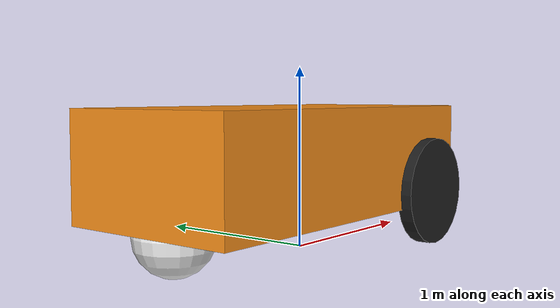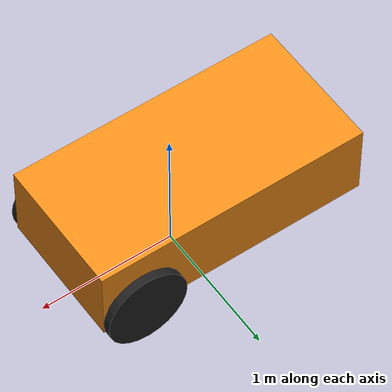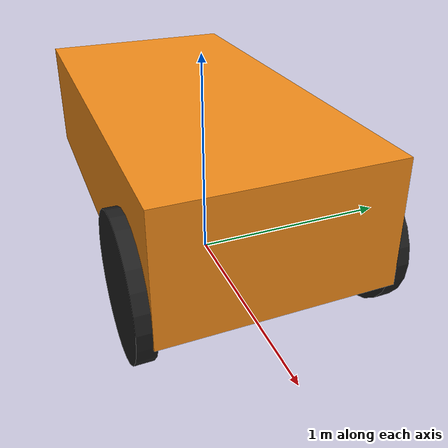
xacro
<?xml version="1.0"?>
<!-- 4 Wheel Robot with front steering and rear drive -->
<robot xmlns:xacro="http://www.ros.org/wiki/xacro" name="wheelchair">

 <!-- Import Rviz colors -->
  <xacro:include filename="$(find ros2_control_wheelchair)/description/material/wheelchair.materials.xacro" />

  <xacro:include filename="$(find ros2_control_wheelchair)/description/urdf/wheelchair_description.urdf.xacro" />

  <!-- Import wheelchair ros2_control description -->
  <xacro:include filename="$(find ros2_control_wheelchair)/description/ros2_control/wheelchair.ros2_control.xacro" />

  <xacro:wheelchair/>

  <xacro:wheelchair_ros2_control name="wheelchair"/>

  <xacro:include filename="$(find ros2_control_wheelchair)/description/gazebo/wheelchair.gazebo.xacro" />
  <xacro:wheelchair_gazebo/>

</robot>

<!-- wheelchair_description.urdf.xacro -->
<robot xmlns:xacro="http://www.ros.org/wiki/xacro">

  <xacro:macro name="wheelchair">

  <link name="chassis">
      <collision>
        <origin xyz="-0.151427 -0 0.5" rpy="0 0 0"/>
        <geometry>
          <box size="2.01142 1 0.568726"/>
        </geometry>
      </collision>

      <visual>
        <origin xyz="-0.151427 -0 0.5" rpy="0 0 0"/>
        <geometry>
          <box size="2.01142 1 0.568726"/>
        </geometry>
        <material name="orange"/>
      </visual>

      <inertial>
        <origin xyz="-0.151427 -0 0.5" rpy="0 0 0"/>
        <mass value="1.14395"/>
        <inertia
          ixx="0.126164"
          ixy="0.0"
          ixz="0.0"
          iyy="0.416519"
          iyz="0.0"
          izz="0.481014"/>
      </inertial>
    </link>

    <!-- left wheel Link -->
    <link name="left_wheel">
      <collision>
        <geometry>
          <cylinder length="0.08" radius="0.3" />
        </geometry>
      </collision>
      <visual>
        <geometry>
          <cylinder length="0.08" radius="0.3" />
        </geometry>
        <material name="black" />
      </visual>

      <inertial>
        <mass value="2" />
        <inertia ixx="0.145833" ixy="0.0" ixz="0.0" iyy="0.145833" iyz="0.0" izz="0.125" />
      </inertial>
    </link>

    <!-- right wheel Link -->
    <link name="right_wheel">
      <collision>
        <geometry>
          <cylinder length="0.08" radius="0.3" />
        </geometry>
      </collision>
      <visual>
        <geometry>
          <cylinder length="0.08" radius="0.3" />
        </geometry>
        <material name="black" />
      </visual>

      <inertial>
        <mass value="2" />
        <inertia ixx="0.145833" ixy="0.0" ixz="0.0" iyy="0.145833" iyz="0.0" izz="0.125" />
      </inertial>
    </link>

    <!-- caster frontal wheel Link -->
    <link name="caster">
      <collision>
        <geometry>
          <sphere radius="0.2"/>
        </geometry>
      </collision>

      <visual>
        <geometry>
          <sphere radius="0.2"/>
        </geometry>
        <material name="white"/>
      </visual>

      <inertial>
        <origin xyz="-0.957138 -0 0.2" rpy="0 0 0"/>
        <mass value="0.005"/>
        <inertia
          ixx="0.1"
          ixy="0.0"
          ixz="0.0"
          iyy="0.1"
          iyz="0.0"
          izz="0.1"/>
      </inertial>
    </link>

    <joint name="left_wheel_joint" type="continuous">
      <origin xyz="0.554283 0.52 0.3" rpy="-1.5707 0 0"/>
      <parent link="chassis"/>
      <child link="left_wheel"/>
      <axis xyz="0 0 1"/>
      <dynamics damping="0.2"/>
    </joint>

    <joint name="right_wheel_joint" type="continuous">
      <origin xyz="0.554283 -0.52 0.3" rpy="-1.5707 0 0"/>
      <parent link="chassis"/>
      <child link="right_wheel"/>
      <axis xyz="0 0 1"/>
      <dynamics damping="0.2"/>
    </joint>

    <joint name="caster_joint" type="fixed">
      <origin xyz="-0.957138 -0 0.2" rpy="0 0 0"/>
      <parent link="chassis"/>
      <child link="caster"/>
    </joint>

</xacro:macro>

</robot>
